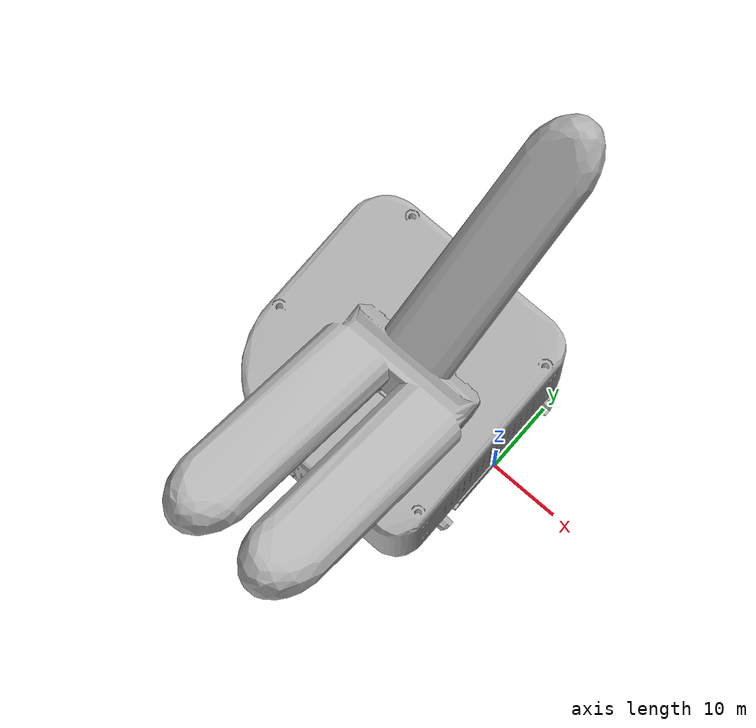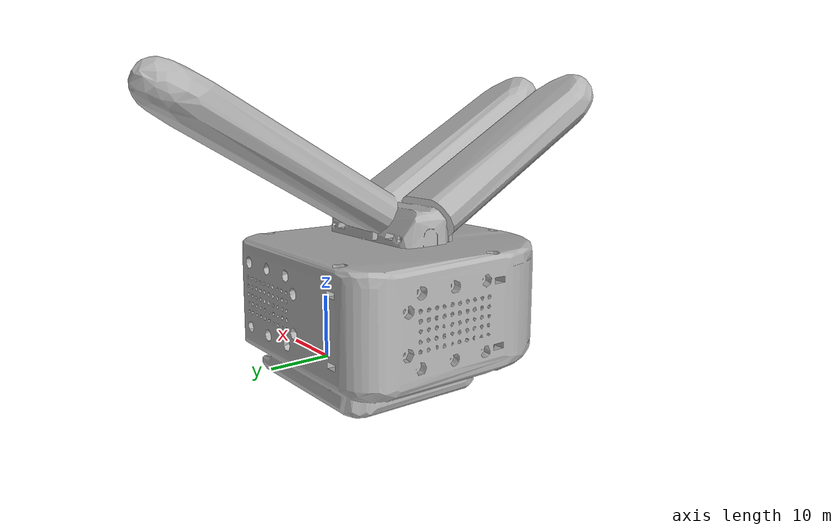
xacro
<?xml version="1.0"?>
<robot xmlns:xacro="http://www.ros.org/wiki/xacro" name="softhand_right">
  <xacro:property name="M_PI" value="3.14159265359"/>

  <link name="right_softhand">
    <visual>
      <origin rpy="0 0 ${M_PI/2}" xyz="0.03 0 0"/>
      <geometry>
        <mesh filename="package://softhand_ros/meshes/softhand_right.stl" scale="1 1 1"/>
      </geometry>
      <material name="white">
        <color rgba="0.7 0.7 0.7 1"/>
      </material>
    </visual>
    <collision>
      <origin rpy="0 0 0" xyz="-0.025 -0.005 0.045"/>
      <geometry>
        <box size="0.11 0.11 0.05"/>
      </geometry>
    </collision>
    <!--FIXME: Adjust inertia-->
    <inertial>
      <origin rpy="0 0 0" xyz="0 0 0"/>
      <mass value="0.3"/>
      <inertia ixx="0.001" ixy="0" ixz="0" iyy="0.001" iyz="0" izz="0.001"/>
    </inertial>
  </link>

</robot>
